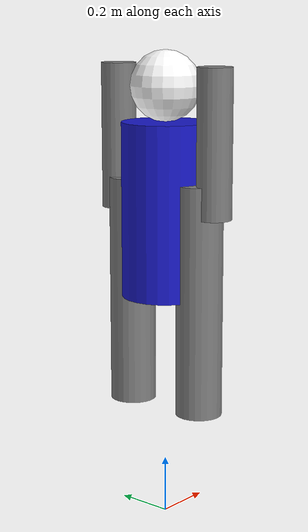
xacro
<?xml version="1.0"?>
<robot xmlns:xacro="http://www.ros.org/wiki/xacro" name="humanoid_ch2.1">

    <xacro:include filename="$(find robotics_book_code)/module2-the-digital-twin/shared/humanoid_base.urdf.xacro" />

    <!-- In later chapters, we might add more sensors or components here -->

</robot>

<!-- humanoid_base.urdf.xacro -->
<robot xmlns:xacro="http://www.ros.org/wiki/xacro" name="humanoid_base">

  <!-- Constants -->
  <xacro:property name="PI" value="3.1415926535897931"/>
  <xacro:property name="torso_len" value="0.6"/>
  <xacro:property name="torso_rad" value="0.15"/>
  <xacro:property name="head_rad" value="0.12"/>
  <xacro:property name="leg_len" value="0.8"/>
  <xacro:property name="leg_rad" value="0.08"/>
  <xacro:property name="arm_len" value="0.5"/>
  <xacro:property name="arm_rad" value="0.06"/>
  <xacro:property name="foot_len" value="0.2"/>
  <xacro:property name="foot_rad" value="0.1"/>

  <!-- Materials -->
  <material name="grey">
    <color rgba="0.5 0.5 0.5 1"/>
  </material>
  <material name="blue">
    <color rgba="0.1 0.1 0.8 1"/>
  </material>
  <material name="white">
    <color rgba="1.0 1.0 1.0 1"/>
  </material>

  <!-- Base Link -->
  <link name="base_link"/>

  <!-- Torso -->
  <link name="torso">
    <visual>
      <geometry>
        <cylinder length="${torso_len}" radius="${torso_rad}"/>
      </geometry>
      <material name="blue"/>
    </visual>
    <collision>
      <geometry>
        <cylinder length="${torso_len}" radius="${torso_rad}"/>
      </geometry>
    </collision>
    <inertial>
      <mass value="10"/>
      <inertia ixx="1.0" ixy="0" ixz="0" iyy="1.0" iyz="0" izz="0.5"/>
    </inertial>
  </link>
  <joint name="base_to_torso" type="fixed">
    <parent link="base_link"/>
    <child link="torso"/>
    <origin xyz="0 0 ${leg_len + torso_len/2}" rpy="0 0 0"/>
  </joint>

  <!-- Head -->
  <link name="head">
    <visual>
      <geometry>
        <sphere radius="${head_rad}"/>
      </geometry>
      <material name="white"/>
    </visual>
    <collision>
      <geometry>
        <sphere radius="${head_rad}"/>
      </geometry>
    </collision>
    <inertial>
      <mass value="2"/>
      <inertia ixx="0.1" ixy="0" ixz="0" iyy="0.1" iyz="0" izz="0.1"/>
    </inertial>
  </link>
  <joint name="torso_to_head" type="revolute">
    <parent link="torso"/>
    <child link="head"/>
    <origin xyz="0 0 ${torso_len/2 + head_rad}" rpy="0 0 0"/>
    <axis xyz="0 0 1"/>
    <limit lower="-${PI/2}" upper="${PI/2}" effort="10" velocity="1.0"/>
  </joint>

  <!-- Macro for a leg -->
  <xacro:macro name="leg" params="prefix side">
    <link name="${prefix}_${side}_leg">
      <visual>
        <geometry>
          <cylinder length="${leg_len}" radius="${leg_rad}"/>
        </geometry>
        <material name="grey"/>
      </visual>
      <collision>
        <geometry>
          <cylinder length="${leg_len}" radius="${leg_rad}"/>
        </geometry>
      </collision>
      <inertial>
        <mass value="5"/>
        <inertia ixx="0.5" ixy="0" ixz="0" iyy="0.5" iyz="0" izz="0.2"/>
      </inertial>
    </link>
    <joint name="torso_to_${prefix}_${side}_leg" type="revolute">
      <parent link="torso"/>
      <child link="${prefix}_${side}_leg"/>
      <origin xyz="0 ${side*(torso_rad)} -${torso_len/2}" rpy="0 0 0"/>
      <axis xyz="1 0 0"/>
      <limit lower="-${PI/2}" upper="${PI/2}" effort="100" velocity="1.0"/>
    </joint>
  </xacro:macro>

  <!-- Macro for an arm -->
  <xacro:macro name="arm" params="prefix side">
    <link name="${prefix}_${side}_arm">
      <visual>
        <geometry>
          <cylinder length="${arm_len}" radius="${arm_rad}"/>
        </geometry>
        <material name="grey"/>
      </visual>
      <collision>
        <geometry>
          <cylinder length="${arm_len}" radius="${arm_rad}"/>
        </geometry>
      </collision>
      <inertial>
        <mass value="3"/>
        <inertia ixx="0.3" ixy="0" ixz="0" iyy="0.3" iyz="0" izz="0.1"/>
      </inertial>
    </link>
    <joint name="torso_to_${prefix}_${side}_arm" type="revolute">
      <parent link="torso"/>
      <child link="${prefix}_${side}_arm"/>
      <origin xyz="0 ${side*(torso_rad + arm_rad)} ${torso_len/2 - arm_rad}" rpy="0 0 0"/>
      <axis xyz="1 0 0"/>
      <limit lower="-${PI}" upper="${PI}" effort="50" velocity="1.0"/>
    </joint>
  </xacro:macro>

  <!-- Instantiate legs and arms -->
  <xacro:leg prefix="right" side="1"/>
  <xacro:leg prefix="left" side="-1"/>
  <xacro:arm prefix="right" side="1"/>
  <xacro:arm prefix="left" side="-1"/>

</robot>
